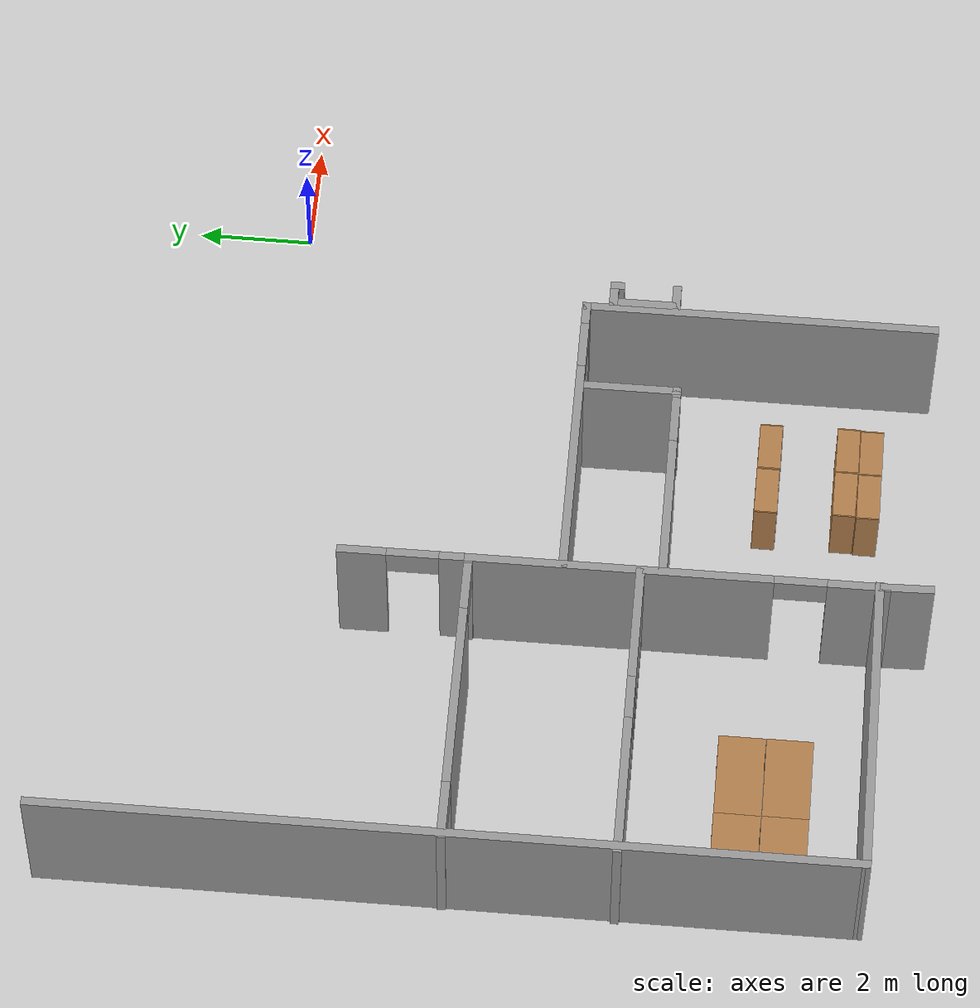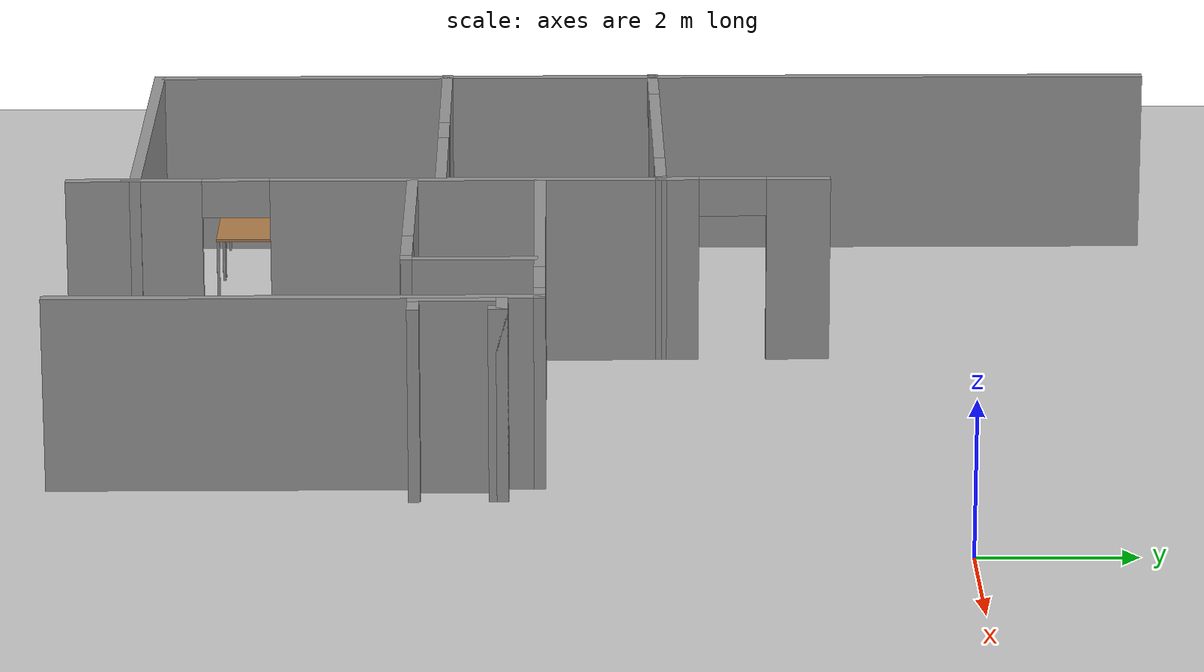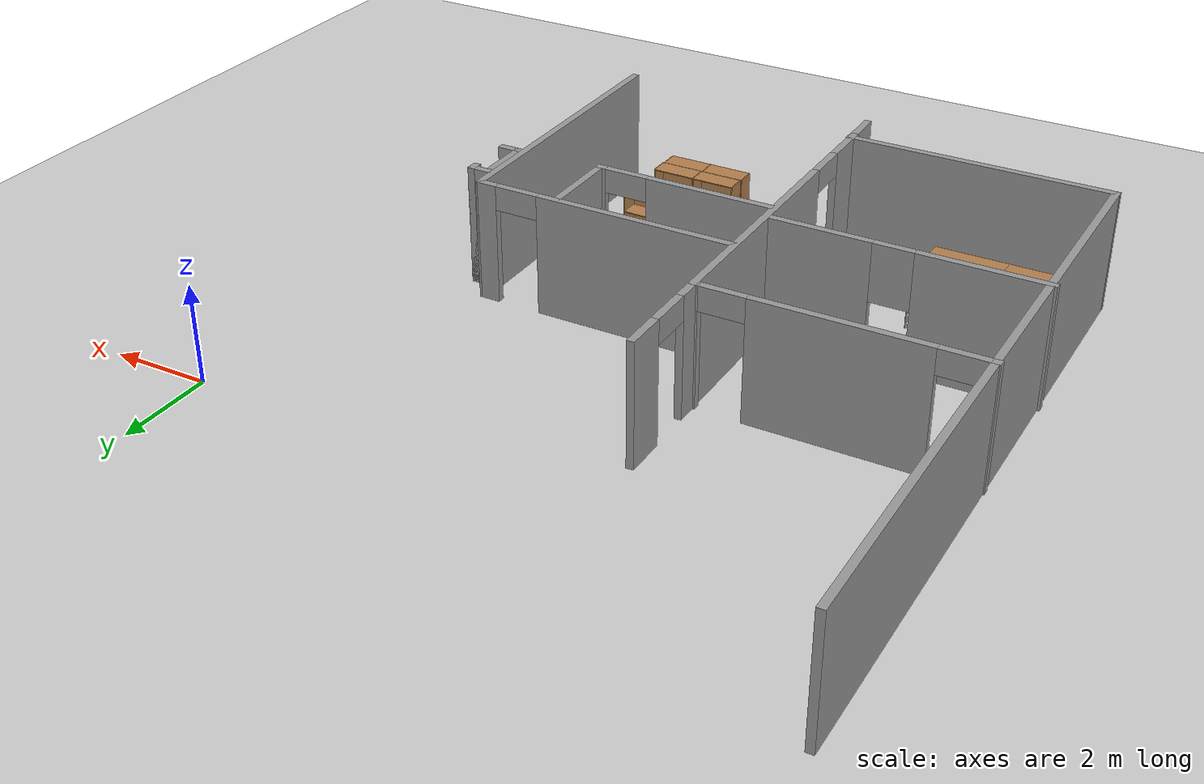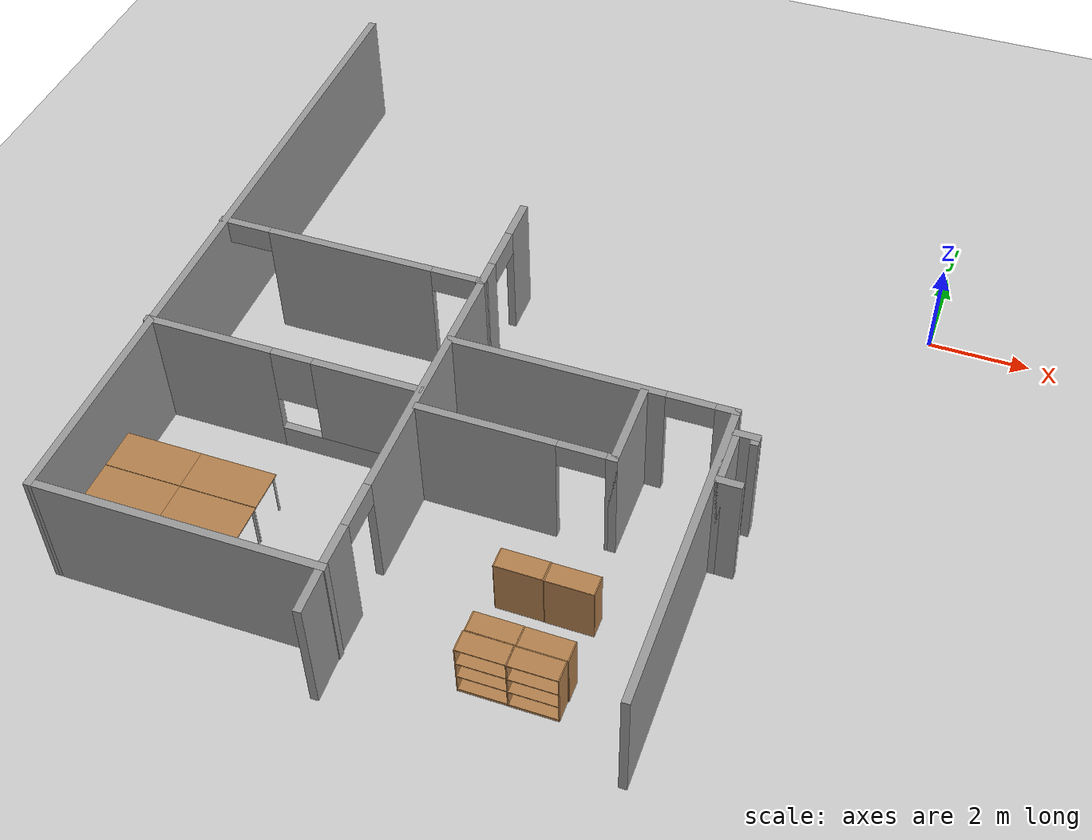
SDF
<sdf version="1.6">
 <world name="default">
  <model name="ground_plane">
   <static>1</static>
   <link name="link">
    <collision name="collision">
     <geometry><plane><normal>0 0 1</normal><size>100 100</size></plane></geometry>
     <surface><friction><ode><mu>100</mu><mu2>50</mu2></ode></friction></surface>
    </collision>
    <visual name="visual">
     <cast_shadows>0</cast_shadows>
     <geometry><plane><normal>0 0 1</normal><size>100 100</size></plane></geometry>
     <material>
      <script><uri>file://media/materials/scripts/gazebo.material</uri><name>Gazebo/Grey</name></script>
     </material>
    </visual>
   </link>
  </model>
  <model name="office02">
   <pose>-0.0751 -0.58893 0 0 -0 0</pose>
   <link name="Wall_100">
    <collision name="Wall_100_Collision">
     <geometry><box><size>0.25 0.15 2.5</size></box></geometry>
     <pose>0 0 1.25 0 -0 0</pose>
    </collision>
    <visual name="Wall_100_Visual">
     <pose>0 0 1.25 0 -0 0</pose>
     <geometry><box><size>0.25 0.15 2.5</size></box></geometry>
     <material>
      <script><uri>file://media/materials/scripts/gazebo.material</uri><name>Gazebo/Grey</name></script>
      <ambient>1 1 1 1</ambient>
     </material>
     <meta><layer>0</layer></meta>
    </visual>
    <pose>-2.1626 -5.16238 0 0 -0 -1.5708</pose>
   </link>
   <link name="Wall_6">
    <collision name="Wall_6_Collision">
     <geometry><box><size>14 0.15 2.5</size></box></geometry>
     <pose>0 0 1.25 0 -0 0</pose>
    </collision>
    <visual name="Wall_6_Visual">
     <pose>0 0 1.25 0 -0 0</pose>
     <geometry><box><size>14 0.15 2.5</size></box></geometry>
     <material>
      <script><uri>file://media/materials/scripts/gazebo.material</uri><name>Gazebo/Grey</name></script>
      <ambient>1 1 1 1</ambient>
     </material>
     <meta><layer>0</layer></meta>
    </visual>
    <pose>-13.3571 -3.12129 0 0 -0 -1.5708</pose>
   </link>
   <link name="Wall_60">
    <pose>-10.6981 -3.05436 0 0 -0 0.003767</pose>
    <visual name="Wall_60_Visual_0">
     <pose>-2.67914 0 1.25 0 -0 0</pose>
     <geometry><box><size>0.162109 0.15 2.5</size></box></geometry>
     <material>
      <script><uri>file://media/materials/scripts/gazebo.material</uri><name>Gazebo/Grey</name></script>
      <ambient>1 1 1 1</ambient>
     </material>
     <meta><layer>0</layer></meta>
    </visual>
    <collision name="Wall_60_Collision_0">
     <geometry><box><size>0.162109 0.15 2.5</size></box></geometry>
     <pose>-2.67914 0 1.25 0 -0 0</pose>
    </collision>
    <visual name="Wall_60_Visual_1">
     <pose>-0.013301 0 1.25 0 -0 0</pose>
     <geometry><box><size>3.36956 0.15 2.5</size></box></geometry>
     <material>
      <script><uri>file://media/materials/scripts/gazebo.material</uri><name>Gazebo/Grey</name></script>
      <ambient>1 1 1 1</ambient>
     </material>
     <meta><layer>0</layer></meta>
    </visual>
    <collision name="Wall_60_Collision_1">
     <geometry><box><size>3.36956 0.15 2.5</size></box></geometry>
     <pose>-0.013301 0 1.25 0 -0 0</pose>
    </collision>
    <visual name="Wall_60_Visual_2">
     <pose>2.66583 0 1.25 0 -0 0</pose>
     <geometry><box><size>0.18871 0.15 2.5</size></box></geometry>
     <material>
      <script><uri>file://media/materials/scripts/gazebo.material</uri><name>Gazebo/Grey</name></script>
      <ambient>1 1 1 1</ambient>
     </material>
     <meta><layer>0</layer></meta>
    </visual>
    <collision name="Wall_60_Collision_2">
     <geometry><box><size>0.18871 0.15 2.5</size></box></geometry>
     <pose>2.66583 0 1.25 0 -0 0</pose>
    </collision>
    <visual name="Wall_60_Visual_3">
     <pose>-2.14808 0 2.25 0 -0 0</pose>
     <geometry><box><size>0.9 0.15 0.5</size></box></geometry>
     <material>
      <script><uri>file://media/materials/scripts/gazebo.material</uri><name>Gazebo/Grey</name></script>
      <ambient>1 1 1 1</ambient>
     </material>
     <meta><layer>0</layer></meta>
    </visual>
    <collision name="Wall_60_Collision_3">
     <geometry><box><size>0.9 0.15 0.5</size></box></geometry>
     <pose>-2.14808 0 2.25 0 -0 0</pose>
    </collision>
    <visual name="Wall_60_Visual_4">
     <pose>2.12148 0 2.25 0 -0 0</pose>
     <geometry><box><size>0.9 0.15 0.5</size></box></geometry>
     <material>
      <script><uri>file://media/materials/scripts/gazebo.material</uri><name>Gazebo/Grey</name></script>
      <ambient>1 1 1 1</ambient>
     </material>
     <meta><layer>0</layer></meta>
    </visual>
    <collision name="Wall_60_Collision_4">
     <geometry><box><size>0.9 0.15 0.5</size></box></geometry>
     <pose>2.12148 0 2.25 0 -0 0</pose>
    </collision>
   </link>
   <link name="Wall_61">
    <pose>-8.01592 -1.95571 0 0 -0 1.57351</pose>
    <visual name="Wall_61_Visual_0">
     <pose>-0.874396 0 1.25 0 -0 0</pose>
     <geometry><box><size>0.578281 0.15 2.5</size></box></geometry>
     <material>
      <script><uri>file://media/materials/scripts/gazebo.material</uri><name>Gazebo/Grey</name></script>
      <ambient>1 1 1 1</ambient>
     </material>
     <meta><layer>0</layer></meta>
    </visual>
    <collision name="Wall_61_Collision_0">
     <geometry><box><size>0.578281 0.15 2.5</size></box></geometry>
     <pose>-0.874396 0 1.25 0 -0 0</pose>
    </collision>
    <visual name="Wall_61_Visual_1">
     <pose>0.73914 0 1.25 0 -0 0</pose>
     <geometry><box><size>0.848792 0.15 2.5</size></box></geometry>
     <material>
      <script><uri>file://media/materials/scripts/gazebo.material</uri><name>Gazebo/Grey</name></script>
      <ambient>1 1 1 1</ambient>
     </material>
     <meta><layer>0</layer></meta>
    </visual>
    <collision name="Wall_61_Collision_1">
     <geometry><box><size>0.848792 0.15 2.5</size></box></geometry>
     <pose>0.73914 0 1.25 0 -0 0</pose>
    </collision>
    <visual name="Wall_61_Visual_2">
     <pose>-0.135255 0 2.25 0 -0 0</pose>
     <geometry><box><size>0.9 0.15 0.5</size></box></geometry>
     <material>
      <script><uri>file://media/materials/scripts/gazebo.material</uri><name>Gazebo/Grey</name></script>
      <ambient>1 1 1 1</ambient>
     </material>
     <meta><layer>0</layer></meta>
    </visual>
    <collision name="Wall_61_Collision_2">
     <geometry><box><size>0.9 0.15 0.5</size></box></geometry>
     <pose>-0.135255 0 2.25 0 -0 0</pose>
    </collision>
   </link>
   <link name="Wall_7">
    <collision name="Wall_7_Collision">
     <geometry><box><size>5.513 0.15 2.5</size></box></geometry>
     <pose>0 0 1.25 0 -0 0</pose>
    </collision>
    <visual name="Wall_7_Visual">
     <pose>0 0 1.25 0 -0 0</pose>
     <geometry><box><size>5.513 0.15 2.5</size></box></geometry>
     <material>
      <script><uri>file://media/materials/scripts/gazebo.material</uri><name>Gazebo/Grey</name></script>
      <ambient>1 1 1 1</ambient>
     </material>
     <meta><layer>0</layer></meta>
    </visual>
    <pose>-10.6756 -10.0362 0 0 -0 0.003772</pose>
   </link>
   <link name="Wall_74">
    <pose>-8.01297 -6.59424 0 0 -0 -1.5708</pose>
    <visual name="Wall_74_Visual_0">
     <pose>-0.989784 0 1.25 0 -0 0</pose>
     <geometry><box><size>5.27043 0.15 2.5</size></box></geometry>
     <material>
      <script><uri>file://media/materials/scripts/gazebo.material</uri><name>Gazebo/Grey</name></script>
      <ambient>1 1 1 1</ambient>
     </material>
     <meta><layer>0</layer></meta>
    </visual>
    <collision name="Wall_74_Collision_0">
     <geometry><box><size>5.27043 0.15 2.5</size></box></geometry>
     <pose>-0.989784 0 1.25 0 -0 0</pose>
    </collision>
    <visual name="Wall_74_Visual_1">
     <pose>3.08522 0 1.25 0 -0 0</pose>
     <geometry><box><size>1.07957 0.15 2.5</size></box></geometry>
     <material>
      <script><uri>file://media/materials/scripts/gazebo.material</uri><name>Gazebo/Grey</name></script>
      <ambient>1 1 1 1</ambient>
     </material>
     <meta><layer>0</layer></meta>
    </visual>
    <collision name="Wall_74_Collision_1">
     <geometry><box><size>1.07957 0.15 2.5</size></box></geometry>
     <pose>3.08522 0 1.25 0 -0 0</pose>
    </collision>
    <visual name="Wall_74_Visual_2">
     <pose>2.09543 0 2.25 0 -0 0</pose>
     <geometry><box><size>0.9 0.15 0.5</size></box></geometry>
     <material>
      <script><uri>file://media/materials/scripts/gazebo.material</uri><name>Gazebo/Grey</name></script>
      <ambient>1 1 1 1</ambient>
     </material>
     <meta><layer>0</layer></meta>
    </visual>
    <collision name="Wall_74_Collision_2">
     <geometry><box><size>0.9 0.15 0.5</size></box></geometry>
     <pose>2.09543 0 2.25 0 -0 0</pose>
    </collision>
   </link>
   <link name="Wall_76">
    <pose>-10.7311 -5.97066 0 0 -0 0</pose>
    <visual name="Wall_76_Visual_0">
     <pose>-1.46747 0 1.25 0 -0 0</pose>
     <geometry><box><size>2.56506 0.15 2.5</size></box></geometry>
     <material>
      <script><uri>file://media/materials/scripts/gazebo.material</uri><name>Gazebo/Grey</name></script>
      <ambient>1 1 1 1</ambient>
     </material>
     <meta><layer>0</layer></meta>
    </visual>
    <collision name="Wall_76_Collision_0">
     <geometry><box><size>2.56506 0.15 2.5</size></box></geometry>
     <pose>-1.46747 0 1.25 0 -0 0</pose>
    </collision>
    <visual name="Wall_76_Visual_1">
     <pose>1.28253 0 0.25 0 -0 0</pose>
     <geometry><box><size>2.93494 0.15 0.5</size></box></geometry>
     <material>
      <script><uri>file://media/materials/scripts/gazebo.material</uri><name>Gazebo/Grey</name></script>
      <ambient>1 1 1 1</ambient>
     </material>
     <meta><layer>0</layer></meta>
    </visual>
    <collision name="Wall_76_Collision_1">
     <geometry><box><size>2.93494 0.15 0.5</size></box></geometry>
     <pose>1.28253 0 0.25 0 -0 0</pose>
    </collision>
    <visual name="Wall_76_Visual_2">
     <pose>1.68253 0 1.5 0 -0 0</pose>
     <geometry><box><size>2.13494 0.15 2</size></box></geometry>
     <material>
      <script><uri>file://media/materials/scripts/gazebo.material</uri><name>Gazebo/Grey</name></script>
      <ambient>1 1 1 1</ambient>
     </material>
     <meta><layer>0</layer></meta>
    </visual>
    <collision name="Wall_76_Collision_2">
     <geometry><box><size>2.13494 0.15 2</size></box></geometry>
     <pose>1.68253 0 1.5 0 -0 0</pose>
    </collision>
    <visual name="Wall_76_Visual_3">
     <pose>0.215062 0 1.9 0 -0 0</pose>
     <geometry><box><size>0.8 0.15 1.2</size></box></geometry>
     <material>
      <script><uri>file://media/materials/scripts/gazebo.material</uri><name>Gazebo/Grey</name></script>
      <ambient>1 1 1 1</ambient>
     </material>
     <meta><layer>0</layer></meta>
    </visual>
    <collision name="Wall_76_Collision_3">
     <geometry><box><size>0.8 0.15 1.2</size></box></geometry>
     <pose>0.215062 0 1.9 0 -0 0</pose>
    </collision>
   </link>
   <link name="Wall_78">
    <pose>-5.31765 -4.65043 0 0 -0 -7.4e-05</pose>
    <visual name="Wall_78_Visual_0">
     <pose>-0.673576 0 1.25 0 -0 0</pose>
     <geometry><box><size>4.15285 0.15 2.5</size></box></geometry>
     <material>
      <script><uri>file://media/materials/scripts/gazebo.material</uri><name>Gazebo/Grey</name></script>
      <ambient>1 1 1 1</ambient>
     </material>
     <meta><layer>0</layer></meta>
    </visual>
    <collision name="Wall_78_Collision_0">
     <geometry><box><size>4.15285 0.15 2.5</size></box></geometry>
     <pose>-0.673576 0 1.25 0 -0 0</pose>
    </collision>
    <visual name="Wall_78_Visual_1">
     <pose>2.52642 0 1.25 0 -0 0</pose>
     <geometry><box><size>0.447152 0.15 2.5</size></box></geometry>
     <material>
      <script><uri>file://media/materials/scripts/gazebo.material</uri><name>Gazebo/Grey</name></script>
      <ambient>1 1 1 1</ambient>
     </material>
     <meta><layer>0</layer></meta>
    </visual>
    <collision name="Wall_78_Collision_1">
     <geometry><box><size>0.447152 0.15 2.5</size></box></geometry>
     <pose>2.52642 0 1.25 0 -0 0</pose>
    </collision>
    <visual name="Wall_78_Visual_2">
     <pose>1.85285 0 2.25 0 -0 0</pose>
     <geometry><box><size>0.9 0.15 0.5</size></box></geometry>
     <material>
      <script><uri>file://media/materials/scripts/gazebo.material</uri><name>Gazebo/Grey</name></script>
      <ambient>1 1 1 1</ambient>
     </material>
     <meta><layer>0</layer></meta>
    </visual>
    <collision name="Wall_78_Collision_2">
     <geometry><box><size>0.9 0.15 0.5</size></box></geometry>
     <pose>1.85285 0 2.25 0 -0 0</pose>
    </collision>
   </link>
   <link name="Wall_79">
    <collision name="Wall_79_Collision">
     <geometry><box><size>6.25 0.15 2.5</size></box></geometry>
     <pose>0 0 1.25 0 -0 0</pose>
    </collision>
    <visual name="Wall_79_Visual">
     <pose>0 0 1.25 0 -0 0</pose>
     <geometry><box><size>6.25 0.15 2.5</size></box></geometry>
     <material>
      <script><uri>file://media/materials/scripts/gazebo.material</uri><name>Gazebo/Grey</name></script>
      <ambient>1 1 1 1</ambient>
     </material>
     <meta><layer>0</layer></meta>
    </visual>
    <pose>-2.6427 -7.70063 0 0 -0 -1.5708</pose>
   </link>
   <link name="Wall_8">
    <collision name="Wall_8_Collision">
     <geometry><box><size>1 0.15 2.5</size></box></geometry>
     <pose>0 0 1.25 0 -0 0</pose>
    </collision>
    <visual name="Wall_8_Visual">
     <pose>0 0 1.25 0 -0 0</pose>
     <geometry><box><size>1 0.15 2.5</size></box></geometry>
     <material>
      <script><uri>file://media/materials/scripts/gazebo.material</uri><name>Gazebo/Grey</name></script>
      <ambient>1 1 1 1</ambient>
     </material>
     <meta><layer>0</layer></meta>
    </visual>
    <pose>-8.00405 -10.4508 0 0 -0 -1.54645</pose>
   </link>
   <link name="Wall_81">
    <pose>-6.1084 -6.34463 0 0 -0 0</pose>
    <visual name="Wall_81_Visual_0">
     <pose>-0.55485 0 1.25 0 -0 0</pose>
     <geometry><box><size>2.6403 0.15 2.5</size></box></geometry>
     <material>
      <script><uri>file://media/materials/scripts/gazebo.material</uri><name>Gazebo/Grey</name></script>
      <ambient>1 1 1 1</ambient>
     </material>
     <meta><layer>0</layer></meta>
    </visual>
    <collision name="Wall_81_Collision_0">
     <geometry><box><size>2.6403 0.15 2.5</size></box></geometry>
     <pose>-0.55485 0 1.25 0 -0 0</pose>
    </collision>
    <visual name="Wall_81_Visual_1">
     <pose>1.77015 0 1.25 0 -0 0</pose>
     <geometry><box><size>0.2097 0.15 2.5</size></box></geometry>
     <material>
      <script><uri>file://media/materials/scripts/gazebo.material</uri><name>Gazebo/Grey</name></script>
      <ambient>1 1 1 1</ambient>
     </material>
     <meta><layer>0</layer></meta>
    </visual>
    <collision name="Wall_81_Collision_1">
     <geometry><box><size>0.2097 0.15 2.5</size></box></geometry>
     <pose>1.77015 0 1.25 0 -0 0</pose>
    </collision>
    <visual name="Wall_81_Visual_2">
     <pose>1.2153 0 2.25 0 -0 0</pose>
     <geometry><box><size>0.9 0.15 0.5</size></box></geometry>
     <material>
      <script><uri>file://media/materials/scripts/gazebo.material</uri><name>Gazebo/Grey</name></script>
      <ambient>1 1 1 1</ambient>
     </material>
     <meta><layer>0</layer></meta>
    </visual>
    <collision name="Wall_81_Collision_2">
     <geometry><box><size>0.9 0.15 0.5</size></box></geometry>
     <pose>1.2153 0 2.25 0 -0 0</pose>
    </collision>
   </link>
   <link name="Wall_82">
    <collision name="Wall_82_Collision">
     <geometry><box><size>1.75 0.15 2.5</size></box></geometry>
     <pose>0 0 1.25 0 -0 0</pose>
    </collision>
    <visual name="Wall_82_Visual">
     <pose>0 0 1.25 0 -0 0</pose>
     <geometry><box><size>1.75 0.15 2.5</size></box></geometry>
     <material>
      <script><uri>file://media/materials/scripts/gazebo.material</uri><name>Gazebo/Grey</name></script>
      <ambient>1 1 1 1</ambient>
     </material>
     <meta><layer>0</layer></meta>
    </visual>
    <pose>-4.3084 -5.54463 0 0 -0 1.5708</pose>
   </link>
   <link name="Wall_85">
    <collision name="Wall_85_Collision">
     <geometry><box><size>0.5 0.15 2.5</size></box></geometry>
     <pose>0 0 1.25 0 -0 0</pose>
    </collision>
    <visual name="Wall_85_Visual">
     <pose>0 0 1.25 0 -0 0</pose>
     <geometry><box><size>0.5 0.15 2.5</size></box></geometry>
     <material>
      <script><uri>file://media/materials/scripts/gazebo.material</uri><name>Gazebo/Grey</name></script>
      <ambient>1 1 1 1</ambient>
     </material>
     <meta><layer>0</layer></meta>
    </visual>
    <pose>-2.3376 -6.21238 0 0 -0 0</pose>
   </link>
   <link name="Wall_87">
    <collision name="Wall_87_Collision">
     <geometry><box><size>0.5 0.15 2.5</size></box></geometry>
     <pose>0 0 1.25 0 -0 0</pose>
    </collision>
    <visual name="Wall_87_Visual">
     <pose>0 0 1.25 0 -0 0</pose>
     <geometry><box><size>0.5 0.15 2.5</size></box></geometry>
     <material>
      <script><uri>file://media/materials/scripts/gazebo.material</uri><name>Gazebo/Grey</name></script>
      <ambient>1 1 1 1</ambient>
     </material>
     <meta><layer>0</layer></meta>
    </visual>
    <pose>-2.3376 -5.11238 0 0 -0 3.14159</pose>
   </link>
   <link name="Wall_89">
    <collision name="Wall_89_Collision">
     <geometry><box><size>1.25 0.15 2.5</size></box></geometry>
     <pose>0 0 1.25 0 -0 0</pose>
    </collision>
    <visual name="Wall_89_Visual">
     <pose>0 0 1.25 0 -0 0</pose>
     <geometry><box><size>1.25 0.15 2.5</size></box></geometry>
     <material>
      <script><uri>file://media/materials/scripts/gazebo.material</uri><name>Gazebo/Grey</name></script>
      <ambient>1 1 1 1</ambient>
     </material>
     <meta><layer>0</layer></meta>
    </visual>
    <pose>-2.5126 -5.66238 0 0 -0 -1.5708</pose>
   </link>
   <static>1</static>
  </model>
  <model name="bookshelf">
   <static>1</static>
   <link name="link">
    <inertial><mass>1</mass></inertial>
    <collision name="back">
     <pose>0 0.005 0.6 0 -0 0</pose>
     <geometry><box><size>0.9 0.01 1.2</size></box></geometry>
    </collision>
    <visual name="visual1">
     <pose>0 0.005 0.6 0 -0 0</pose>
     <geometry><box><size>0.9 0.01 1.2</size></box></geometry>
     <material>
      <script><uri>file://media/materials/scripts/gazebo.material</uri><name>Gazebo/Wood</name></script>
     </material>
    </visual>
    <collision name="left_side">
     <pose>0.45 -0.195 0.6 0 -0 0</pose>
     <geometry><box><size>0.02 0.4 1.2</size></box></geometry>
    </collision>
    <visual name="visual2">
     <pose>0.45 -0.195 0.6 0 -0 0</pose>
     <geometry><box><size>0.02 0.4 1.2</size></box></geometry>
     <material>
      <script><uri>file://media/materials/scripts/gazebo.material</uri><name>Gazebo/Wood</name></script>
     </material>
    </visual>
    <collision name="right_side">
     <pose>-0.45 -0.195 0.6 0 -0 0</pose>
     <geometry><box><size>0.02 0.4 1.2</size></box></geometry>
    </collision>
    <visual name="visual3">
     <pose>-0.45 -0.195 0.6 0 -0 0</pose>
     <geometry><box><size>0.02 0.4 1.2</size></box></geometry>
     <material>
      <script><uri>file://media/materials/scripts/gazebo.material</uri><name>Gazebo/Wood</name></script>
     </material>
    </visual>
    <collision name="bottom">
     <pose>0 -0.195 0.03 0 -0 0</pose>
     <geometry><box><size>0.88 0.4 0.06</size></box></geometry>
    </collision>
    <visual name="visual4">
     <pose>0 -0.195 0.03 0 -0 0</pose>
     <geometry><box><size>0.88 0.4 0.06</size></box></geometry>
     <material>
      <script><uri>file://media/materials/scripts/gazebo.material</uri><name>Gazebo/Wood</name></script>
     </material>
    </visual>
    <collision name="top">
     <pose>0 -0.195 1.19 0 -0 0</pose>
     <geometry><box><size>0.88 0.4 0.02</size></box></geometry>
    </collision>
    <visual name="visual5">
     <pose>0 -0.195 1.19 0 -0 0</pose>
     <geometry><box><size>0.88 0.4 0.02</size></box></geometry>
     <material>
      <script><uri>file://media/materials/scripts/gazebo.material</uri><name>Gazebo/Wood</name></script>
     </material>
    </visual>
    <collision name="low_shelf">
     <pose>0 -0.195 0.43 0 -0 0</pose>
     <geometry><box><size>0.88 0.4 0.02</size></box></geometry>
    </collision>
    <visual name="visual6">
     <pose>0 -0.195 0.43 0 -0 0</pose>
     <geometry><box><size>0.88 0.4 0.02</size></box></geometry>
     <material>
      <script><uri>file://media/materials/scripts/gazebo.material</uri><name>Gazebo/Wood</name></script>
     </material>
    </visual>
    <collision name="high_shelf">
     <pose>0 -0.195 0.8 0 -0 0</pose>
     <geometry><box><size>0.88 0.4 0.02</size></box></geometry>
    </collision>
    <visual name="visual7">
     <pose>0 -0.195 0.8 0 -0 0</pose>
     <geometry><box><size>0.88 0.4 0.02</size></box></geometry>
     <material>
      <script><uri>file://media/materials/scripts/gazebo.material</uri><name>Gazebo/Wood</name></script>
     </material>
    </visual>
   </link>
   <pose>-5.45404 -8.81186 0 0 -0 3.13674</pose>
  </model>
  <model name="bookshelf_clone">
   <static>1</static>
   <link name="link">
    <inertial><mass>1</mass></inertial>
    <collision name="back">
     <pose>0 0.005 0.6 0 -0 0</pose>
     <geometry><box><size>0.9 0.01 1.2</size></box></geometry>
    </collision>
    <visual name="visual1">
     <pose>0 0.005 0.6 0 -0 0</pose>
     <geometry><box><size>0.9 0.01 1.2</size></box></geometry>
     <material>
      <script><uri>file://media/materials/scripts/gazebo.material</uri><name>Gazebo/Wood</name></script>
     </material>
    </visual>
    <collision name="left_side">
     <pose>0.45 -0.195 0.6 0 -0 0</pose>
     <geometry><box><size>0.02 0.4 1.2</size></box></geometry>
    </collision>
    <visual name="visual2">
     <pose>0.45 -0.195 0.6 0 -0 0</pose>
     <geometry><box><size>0.02 0.4 1.2</size></box></geometry>
     <material>
      <script><uri>file://media/materials/scripts/gazebo.material</uri><name>Gazebo/Wood</name></script>
     </material>
    </visual>
    <collision name="right_side">
     <pose>-0.45 -0.195 0.6 0 -0 0</pose>
     <geometry><box><size>0.02 0.4 1.2</size></box></geometry>
    </collision>
    <visual name="visual3">
     <pose>-0.45 -0.195 0.6 0 -0 0</pose>
     <geometry><box><size>0.02 0.4 1.2</size></box></geometry>
     <material>
      <script><uri>file://media/materials/scripts/gazebo.material</uri><name>Gazebo/Wood</name></script>
     </material>
    </visual>
    <collision name="bottom">
     <pose>0 -0.195 0.03 0 -0 0</pose>
     <geometry><box><size>0.88 0.4 0.06</size></box></geometry>
    </collision>
    <visual name="visual4">
     <pose>0 -0.195 0.03 0 -0 0</pose>
     <geometry><box><size>0.88 0.4 0.06</size></box></geometry>
     <material>
      <script><uri>file://media/materials/scripts/gazebo.material</uri><name>Gazebo/Wood</name></script>
     </material>
    </visual>
    <collision name="top">
     <pose>0 -0.195 1.19 0 -0 0</pose>
     <geometry><box><size>0.88 0.4 0.02</size></box></geometry>
    </collision>
    <visual name="visual5">
     <pose>0 -0.195 1.19 0 -0 0</pose>
     <geometry><box><size>0.88 0.4 0.02</size></box></geometry>
     <material>
      <script><uri>file://media/materials/scripts/gazebo.material</uri><name>Gazebo/Wood</name></script>
     </material>
    </visual>
    <collision name="low_shelf">
     <pose>0 -0.195 0.43 0 -0 0</pose>
     <geometry><box><size>0.88 0.4 0.02</size></box></geometry>
    </collision>
    <visual name="visual6">
     <pose>0 -0.195 0.43 0 -0 0</pose>
     <geometry><box><size>0.88 0.4 0.02</size></box></geometry>
     <material>
      <script><uri>file://media/materials/scripts/gazebo.material</uri><name>Gazebo/Wood</name></script>
     </material>
    </visual>
    <collision name="high_shelf">
     <pose>0 -0.195 0.8 0 -0 0</pose>
     <geometry><box><size>0.88 0.4 0.02</size></box></geometry>
    </collision>
    <visual name="visual7">
     <pose>0 -0.195 0.8 0 -0 0</pose>
     <geometry><box><size>0.88 0.4 0.02</size></box></geometry>
     <material>
      <script><uri>file://media/materials/scripts/gazebo.material</uri><name>Gazebo/Wood</name></script>
     </material>
    </visual>
   </link>
   <pose>-4.53691 -8.82151 0 0 -0 3.13674</pose>
  </model>
  <model name="bookshelf_clone_0">
   <static>1</static>
   <link name="link">
    <inertial><mass>1</mass></inertial>
    <collision name="back">
     <pose>0 0.005 0.6 0 -0 0</pose>
     <geometry><box><size>0.9 0.01 1.2</size></box></geometry>
    </collision>
    <visual name="visual1">
     <pose>0 0.005 0.6 0 -0 0</pose>
     <geometry><box><size>0.9 0.01 1.2</size></box></geometry>
     <material>
      <script><uri>file://media/materials/scripts/gazebo.material</uri><name>Gazebo/Wood</name></script>
     </material>
    </visual>
    <collision name="left_side">
     <pose>0.45 -0.195 0.6 0 -0 0</pose>
     <geometry><box><size>0.02 0.4 1.2</size></box></geometry>
    </collision>
    <visual name="visual2">
     <pose>0.45 -0.195 0.6 0 -0 0</pose>
     <geometry><box><size>0.02 0.4 1.2</size></box></geometry>
     <material>
      <script><uri>file://media/materials/scripts/gazebo.material</uri><name>Gazebo/Wood</name></script>
     </material>
    </visual>
    <collision name="right_side">
     <pose>-0.45 -0.195 0.6 0 -0 0</pose>
     <geometry><box><size>0.02 0.4 1.2</size></box></geometry>
    </collision>
    <visual name="visual3">
     <pose>-0.45 -0.195 0.6 0 -0 0</pose>
     <geometry><box><size>0.02 0.4 1.2</size></box></geometry>
     <material>
      <script><uri>file://media/materials/scripts/gazebo.material</uri><name>Gazebo/Wood</name></script>
     </material>
    </visual>
    <collision name="bottom">
     <pose>0 -0.195 0.03 0 -0 0</pose>
     <geometry><box><size>0.88 0.4 0.06</size></box></geometry>
    </collision>
    <visual name="visual4">
     <pose>0 -0.195 0.03 0 -0 0</pose>
     <geometry><box><size>0.88 0.4 0.06</size></box></geometry>
     <material>
      <script><uri>file://media/materials/scripts/gazebo.material</uri><name>Gazebo/Wood</name></script>
     </material>
    </visual>
    <collision name="top">
     <pose>0 -0.195 1.19 0 -0 0</pose>
     <geometry><box><size>0.88 0.4 0.02</size></box></geometry>
    </collision>
    <visual name="visual5">
     <pose>0 -0.195 1.19 0 -0 0</pose>
     <geometry><box><size>0.88 0.4 0.02</size></box></geometry>
     <material>
      <script><uri>file://media/materials/scripts/gazebo.material</uri><name>Gazebo/Wood</name></script>
     </material>
    </visual>
    <collision name="low_shelf">
     <pose>0 -0.195 0.43 0 -0 0</pose>
     <geometry><box><size>0.88 0.4 0.02</size></box></geometry>
    </collision>
    <visual name="visual6">
     <pose>0 -0.195 0.43 0 -0 0</pose>
     <geometry><box><size>0.88 0.4 0.02</size></box></geometry>
     <material>
      <script><uri>file://media/materials/scripts/gazebo.material</uri><name>Gazebo/Wood</name></script>
     </material>
    </visual>
    <collision name="high_shelf">
     <pose>0 -0.195 0.8 0 -0 0</pose>
     <geometry><box><size>0.88 0.4 0.02</size></box></geometry>
    </collision>
    <visual name="visual7">
     <pose>0 -0.195 0.8 0 -0 0</pose>
     <geometry><box><size>0.88 0.4 0.02</size></box></geometry>
     <material>
      <script><uri>file://media/materials/scripts/gazebo.material</uri><name>Gazebo/Wood</name></script>
     </material>
    </visual>
   </link>
   <pose>-5.41933 -10.1766 0 0 -0 3.13674</pose>
  </model>
  <model name="bookshelf_clone_1">
   <static>1</static>
   <link name="link">
    <inertial><mass>1</mass></inertial>
    <collision name="back">
     <pose>0 0.005 0.6 0 -0 0</pose>
     <geometry><box><size>0.9 0.01 1.2</size></box></geometry>
    </collision>
    <visual name="visual1">
     <pose>0 0.005 0.6 0 -0 0</pose>
     <geometry><box><size>0.9 0.01 1.2</size></box></geometry>
     <material>
      <script><uri>file://media/materials/scripts/gazebo.material</uri><name>Gazebo/Wood</name></script>
     </material>
    </visual>
    <collision name="left_side">
     <pose>0.45 -0.195 0.6 0 -0 0</pose>
     <geometry><box><size>0.02 0.4 1.2</size></box></geometry>
    </collision>
    <visual name="visual2">
     <pose>0.45 -0.195 0.6 0 -0 0</pose>
     <geometry><box><size>0.02 0.4 1.2</size></box></geometry>
     <material>
      <script><uri>file://media/materials/scripts/gazebo.material</uri><name>Gazebo/Wood</name></script>
     </material>
    </visual>
    <collision name="right_side">
     <pose>-0.45 -0.195 0.6 0 -0 0</pose>
     <geometry><box><size>0.02 0.4 1.2</size></box></geometry>
    </collision>
    <visual name="visual3">
     <pose>-0.45 -0.195 0.6 0 -0 0</pose>
     <geometry><box><size>0.02 0.4 1.2</size></box></geometry>
     <material>
      <script><uri>file://media/materials/scripts/gazebo.material</uri><name>Gazebo/Wood</name></script>
     </material>
    </visual>
    <collision name="bottom">
     <pose>0 -0.195 0.03 0 -0 0</pose>
     <geometry><box><size>0.88 0.4 0.06</size></box></geometry>
    </collision>
    <visual name="visual4">
     <pose>0 -0.195 0.03 0 -0 0</pose>
     <geometry><box><size>0.88 0.4 0.06</size></box></geometry>
     <material>
      <script><uri>file://media/materials/scripts/gazebo.material</uri><name>Gazebo/Wood</name></script>
     </material>
    </visual>
    <collision name="top">
     <pose>0 -0.195 1.19 0 -0 0</pose>
     <geometry><box><size>0.88 0.4 0.02</size></box></geometry>
    </collision>
    <visual name="visual5">
     <pose>0 -0.195 1.19 0 -0 0</pose>
     <geometry><box><size>0.88 0.4 0.02</size></box></geometry>
     <material>
      <script><uri>file://media/materials/scripts/gazebo.material</uri><name>Gazebo/Wood</name></script>
     </material>
    </visual>
    <collision name="low_shelf">
     <pose>0 -0.195 0.43 0 -0 0</pose>
     <geometry><box><size>0.88 0.4 0.02</size></box></geometry>
    </collision>
    <visual name="visual6">
     <pose>0 -0.195 0.43 0 -0 0</pose>
     <geometry><box><size>0.88 0.4 0.02</size></box></geometry>
     <material>
      <script><uri>file://media/materials/scripts/gazebo.material</uri><name>Gazebo/Wood</name></script>
     </material>
    </visual>
    <collision name="high_shelf">
     <pose>0 -0.195 0.8 0 -0 0</pose>
     <geometry><box><size>0.88 0.4 0.02</size></box></geometry>
    </collision>
    <visual name="visual7">
     <pose>0 -0.195 0.8 0 -0 0</pose>
     <geometry><box><size>0.88 0.4 0.02</size></box></geometry>
     <material>
      <script><uri>file://media/materials/scripts/gazebo.material</uri><name>Gazebo/Wood</name></script>
     </material>
    </visual>
   </link>
   <pose>-4.51359 -10.1849 0 0 -0 3.13674</pose>
  </model>
  <model name="table">
   <static>1</static>
   <link name="link">
    <collision name="surface">
     <pose>0 0 1 0 -0 0</pose>
     <geometry><box><size>1.5 0.8 0.03</size></box></geometry>
     <surface><friction><ode><mu>0.6</mu><mu2>0.6</mu2></ode></friction></surface>
    </collision>
    <visual name="visual1">
     <pose>0 0 1 0 -0 0</pose>
     <geometry><box><size>1.5 0.8 0.03</size></box></geometry>
     <material>
      <script><uri>file://media/materials/scripts/gazebo.material</uri><name>Gazebo/Wood</name></script>
     </material>
    </visual>
    <collision name="front_left_leg">
     <pose>0.68 0.38 0.5 0 -0 0</pose>
     <geometry><cylinder><radius>0.02</radius><length>1</length></cylinder></geometry>
    </collision>
    <visual name="front_left_leg">
     <pose>0.68 0.38 0.5 0 -0 0</pose>
     <geometry><cylinder><radius>0.02</radius><length>1</length></cylinder></geometry>
     <material>
      <script><uri>file://media/materials/scripts/gazebo.material</uri><name>Gazebo/Grey</name></script>
     </material>
    </visual>
    <collision name="front_right_leg">
     <pose>0.68 -0.38 0.5 0 -0 0</pose>
     <geometry><cylinder><radius>0.02</radius><length>1</length></cylinder></geometry>
    </collision>
    <visual name="front_right_leg">
     <pose>0.68 -0.38 0.5 0 -0 0</pose>
     <geometry><cylinder><radius>0.02</radius><length>1</length></cylinder></geometry>
     <material>
      <script><uri>file://media/materials/scripts/gazebo.material</uri><name>Gazebo/Grey</name></script>
     </material>
    </visual>
    <collision name="back_right_leg">
     <pose>-0.68 -0.38 0.5 0 -0 0</pose>
     <geometry><cylinder><radius>0.02</radius><length>1</length></cylinder></geometry>
    </collision>
    <visual name="back_right_leg">
     <pose>-0.68 -0.38 0.5 0 -0 0</pose>
     <geometry><cylinder><radius>0.02</radius><length>1</length></cylinder></geometry>
     <material>
      <script><uri>file://media/materials/scripts/gazebo.material</uri><name>Gazebo/Grey</name></script>
     </material>
    </visual>
    <collision name="back_left_leg">
     <pose>-0.68 0.38 0.5 0 -0 0</pose>
     <geometry><cylinder><radius>0.02</radius><length>1</length></cylinder></geometry>
    </collision>
    <visual name="back_left_leg">
     <pose>-0.68 0.38 0.5 0 -0 0</pose>
     <geometry><cylinder><radius>0.02</radius><length>1</length></cylinder></geometry>
     <material>
      <script><uri>file://media/materials/scripts/gazebo.material</uri><name>Gazebo/Grey</name></script>
     </material>
    </visual>
   </link>
   <pose>-12.5956 -8.4815 0 0 -0 0</pose>
  </model>
  <model name="table_clone">
   <static>1</static>
   <link name="link">
    <collision name="surface">
     <pose>0 0 1 0 -0 0</pose>
     <geometry><box><size>1.5 0.8 0.03</size></box></geometry>
     <surface><friction><ode><mu>0.6</mu><mu2>0.6</mu2></ode></friction></surface>
    </collision>
    <visual name="visual1">
     <pose>0 0 1 0 -0 0</pose>
     <geometry><box><size>1.5 0.8 0.03</size></box></geometry>
     <material>
      <script><uri>file://media/materials/scripts/gazebo.material</uri><name>Gazebo/Wood</name></script>
     </material>
    </visual>
    <collision name="front_left_leg">
     <pose>0.68 0.38 0.5 0 -0 0</pose>
     <geometry><cylinder><radius>0.02</radius><length>1</length></cylinder></geometry>
    </collision>
    <visual name="front_left_leg">
     <pose>0.68 0.38 0.5 0 -0 0</pose>
     <geometry><cylinder><radius>0.02</radius><length>1</length></cylinder></geometry>
     <material>
      <script><uri>file://media/materials/scripts/gazebo.material</uri><name>Gazebo/Grey</name></script>
     </material>
    </visual>
    <collision name="front_right_leg">
     <pose>0.68 -0.38 0.5 0 -0 0</pose>
     <geometry><cylinder><radius>0.02</radius><length>1</length></cylinder></geometry>
    </collision>
    <visual name="front_right_leg">
     <pose>0.68 -0.38 0.5 0 -0 0</pose>
     <geometry><cylinder><radius>0.02</radius><length>1</length></cylinder></geometry>
     <material>
      <script><uri>file://media/materials/scripts/gazebo.material</uri><name>Gazebo/Grey</name></script>
     </material>
    </visual>
    <collision name="back_right_leg">
     <pose>-0.68 -0.38 0.5 0 -0 0</pose>
     <geometry><cylinder><radius>0.02</radius><length>1</length></cylinder></geometry>
    </collision>
    <visual name="back_right_leg">
     <pose>-0.68 -0.38 0.5 0 -0 0</pose>
     <geometry><cylinder><radius>0.02</radius><length>1</length></cylinder></geometry>
     <material>
      <script><uri>file://media/materials/scripts/gazebo.material</uri><name>Gazebo/Grey</name></script>
     </material>
    </visual>
    <collision name="back_left_leg">
     <pose>-0.68 0.38 0.5 0 -0 0</pose>
     <geometry><cylinder><radius>0.02</radius><length>1</length></cylinder></geometry>
    </collision>
    <visual name="back_left_leg">
     <pose>-0.68 0.38 0.5 0 -0 0</pose>
     <geometry><cylinder><radius>0.02</radius><length>1</length></cylinder></geometry>
     <material>
      <script><uri>file://media/materials/scripts/gazebo.material</uri><name>Gazebo/Grey</name></script>
     </material>
    </visual>
   </link>
   <pose>-11.0989 -8.48396 0 0 -0 0</pose>
  </model>
  <model name="table_clone_0">
   <static>1</static>
   <link name="link">
    <collision name="surface">
     <pose>0 0 1 0 -0 0</pose>
     <geometry><box><size>1.5 0.8 0.03</size></box></geometry>
     <surface><friction><ode><mu>0.6</mu><mu2>0.6</mu2></ode></friction></surface>
    </collision>
    <visual name="visual1">
     <pose>0 0 1 0 -0 0</pose>
     <geometry><box><size>1.5 0.8 0.03</size></box></geometry>
     <material>
      <script><uri>file://media/materials/scripts/gazebo.material</uri><name>Gazebo/Wood</name></script>
     </material>
    </visual>
    <collision name="front_left_leg">
     <pose>0.68 0.38 0.5 0 -0 0</pose>
     <geometry><cylinder><radius>0.02</radius><length>1</length></cylinder></geometry>
    </collision>
    <visual name="front_left_leg">
     <pose>0.68 0.38 0.5 0 -0 0</pose>
     <geometry><cylinder><radius>0.02</radius><length>1</length></cylinder></geometry>
     <material>
      <script><uri>file://media/materials/scripts/gazebo.material</uri><name>Gazebo/Grey</name></script>
     </material>
    </visual>
    <collision name="front_right_leg">
     <pose>0.68 -0.38 0.5 0 -0 0</pose>
     <geometry><cylinder><radius>0.02</radius><length>1</length></cylinder></geometry>
    </collision>
    <visual name="front_right_leg">
     <pose>0.68 -0.38 0.5 0 -0 0</pose>
     <geometry><cylinder><radius>0.02</radius><length>1</length></cylinder></geometry>
     <material>
      <script><uri>file://media/materials/scripts/gazebo.material</uri><name>Gazebo/Grey</name></script>
     </material>
    </visual>
    <collision name="back_right_leg">
     <pose>-0.68 -0.38 0.5 0 -0 0</pose>
     <geometry><cylinder><radius>0.02</radius><length>1</length></cylinder></geometry>
    </collision>
    <visual name="back_right_leg">
     <pose>-0.68 -0.38 0.5 0 -0 0</pose>
     <geometry><cylinder><radius>0.02</radius><length>1</length></cylinder></geometry>
     <material>
      <script><uri>file://media/materials/scripts/gazebo.material</uri><name>Gazebo/Grey</name></script>
     </material>
    </visual>
    <collision name="back_left_leg">
     <pose>-0.68 0.38 0.5 0 -0 0</pose>
     <geometry><cylinder><radius>0.02</radius><length>1</length></cylinder></geometry>
    </collision>
    <visual name="back_left_leg">
     <pose>-0.68 0.38 0.5 0 -0 0</pose>
     <geometry><cylinder><radius>0.02</radius><length>1</length></cylinder></geometry>
     <material>
      <script><uri>file://media/materials/scripts/gazebo.material</uri><name>Gazebo/Grey</name></script>
     </material>
    </visual>
   </link>
   <pose>-11.0958 -9.29439 0 0 -0 0</pose>
  </model>
  <model name="table_clone_1">
   <static>1</static>
   <link name="link">
    <collision name="surface">
     <pose>0 0 1 0 -0 0</pose>
     <geometry><box><size>1.5 0.8 0.03</size></box></geometry>
     <surface><friction><ode><mu>0.6</mu><mu2>0.6</mu2></ode></friction></surface>
    </collision>
    <visual name="visual1">
     <pose>0 0 1 0 -0 0</pose>
     <geometry><box><size>1.5 0.8 0.03</size></box></geometry>
     <material>
      <script><uri>file://media/materials/scripts/gazebo.material</uri><name>Gazebo/Wood</name></script>
     </material>
    </visual>
    <collision name="front_left_leg">
     <pose>0.68 0.38 0.5 0 -0 0</pose>
     <geometry><cylinder><radius>0.02</radius><length>1</length></cylinder></geometry>
    </collision>
    <visual name="front_left_leg">
     <pose>0.68 0.38 0.5 0 -0 0</pose>
     <geometry><cylinder><radius>0.02</radius><length>1</length></cylinder></geometry>
     <material>
      <script><uri>file://media/materials/scripts/gazebo.material</uri><name>Gazebo/Grey</name></script>
     </material>
    </visual>
    <collision name="front_right_leg">
     <pose>0.68 -0.38 0.5 0 -0 0</pose>
     <geometry><cylinder><radius>0.02</radius><length>1</length></cylinder></geometry>
    </collision>
    <visual name="front_right_leg">
     <pose>0.68 -0.38 0.5 0 -0 0</pose>
     <geometry><cylinder><radius>0.02</radius><length>1</length></cylinder></geometry>
     <material>
      <script><uri>file://media/materials/scripts/gazebo.material</uri><name>Gazebo/Grey</name></script>
     </material>
    </visual>
    <collision name="back_right_leg">
     <pose>-0.68 -0.38 0.5 0 -0 0</pose>
     <geometry><cylinder><radius>0.02</radius><length>1</length></cylinder></geometry>
    </collision>
    <visual name="back_right_leg">
     <pose>-0.68 -0.38 0.5 0 -0 0</pose>
     <geometry><cylinder><radius>0.02</radius><length>1</length></cylinder></geometry>
     <material>
      <script><uri>file://media/materials/scripts/gazebo.material</uri><name>Gazebo/Grey</name></script>
     </material>
    </visual>
    <collision name="back_left_leg">
     <pose>-0.68 0.38 0.5 0 -0 0</pose>
     <geometry><cylinder><radius>0.02</radius><length>1</length></cylinder></geometry>
    </collision>
    <visual name="back_left_leg">
     <pose>-0.68 0.38 0.5 0 -0 0</pose>
     <geometry><cylinder><radius>0.02</radius><length>1</length></cylinder></geometry>
     <material>
      <script><uri>file://media/materials/scripts/gazebo.material</uri><name>Gazebo/Grey</name></script>
     </material>
    </visual>
   </link>
   <pose>-12.5957 -9.2909 0 0 -0 0</pose>
  </model>
  <model name="bookshelf_0">
   <static>1</static>
   <link name="link">
    <inertial><mass>1</mass></inertial>
    <collision name="back">
     <pose>0 0.005 0.6 0 -0 0</pose>
     <geometry><box><size>0.9 0.01 1.2</size></box></geometry>
    </collision>
    <visual name="visual1">
     <pose>0 0.005 0.6 0 -0 0</pose>
     <geometry><box><size>0.9 0.01 1.2</size></box></geometry>
     <material>
      <script><uri>file://media/materials/scripts/gazebo.material</uri><name>Gazebo/Wood</name></script>
     </material>
    </visual>
    <collision name="left_side">
     <pose>0.45 -0.195 0.6 0 -0 0</pose>
     <geometry><box><size>0.02 0.4 1.2</size></box></geometry>
    </collision>
    <visual name="visual2">
     <pose>0.45 -0.195 0.6 0 -0 0</pose>
     <geometry><box><size>0.02 0.4 1.2</size></box></geometry>
     <material>
      <script><uri>file://media/materials/scripts/gazebo.material</uri><name>Gazebo/Wood</name></script>
     </material>
    </visual>
    <collision name="right_side">
     <pose>-0.45 -0.195 0.6 0 -0 0</pose>
     <geometry><box><size>0.02 0.4 1.2</size></box></geometry>
    </collision>
    <visual name="visual3">
     <pose>-0.45 -0.195 0.6 0 -0 0</pose>
     <geometry><box><size>0.02 0.4 1.2</size></box></geometry>
     <material>
      <script><uri>file://media/materials/scripts/gazebo.material</uri><name>Gazebo/Wood</name></script>
     </material>
    </visual>
    <collision name="bottom">
     <pose>0 -0.195 0.03 0 -0 0</pose>
     <geometry><box><size>0.88 0.4 0.06</size></box></geometry>
    </collision>
    <visual name="visual4">
     <pose>0 -0.195 0.03 0 -0 0</pose>
     <geometry><box><size>0.88 0.4 0.06</size></box></geometry>
     <material>
      <script><uri>file://media/materials/scripts/gazebo.material</uri><name>Gazebo/Wood</name></script>
     </material>
    </visual>
    <collision name="top">
     <pose>0 -0.195 1.19 0 -0 0</pose>
     <geometry><box><size>0.88 0.4 0.02</size></box></geometry>
    </collision>
    <visual name="visual5">
     <pose>0 -0.195 1.19 0 -0 0</pose>
     <geometry><box><size>0.88 0.4 0.02</size></box></geometry>
     <material>
      <script><uri>file://media/materials/scripts/gazebo.material</uri><name>Gazebo/Wood</name></script>
     </material>
    </visual>
    <collision name="low_shelf">
     <pose>0 -0.195 0.43 0 -0 0</pose>
     <geometry><box><size>0.88 0.4 0.02</size></box></geometry>
    </collision>
    <visual name="visual6">
     <pose>0 -0.195 0.43 0 -0 0</pose>
     <geometry><box><size>0.88 0.4 0.02</size></box></geometry>
     <material>
      <script><uri>file://media/materials/scripts/gazebo.material</uri><name>Gazebo/Wood</name></script>
     </material>
    </visual>
    <collision name="high_shelf">
     <pose>0 -0.195 0.8 0 -0 0</pose>
     <geometry><box><size>0.88 0.4 0.02</size></box></geometry>
    </collision>
    <visual name="visual7">
     <pose>0 -0.195 0.8 0 -0 0</pose>
     <geometry><box><size>0.88 0.4 0.02</size></box></geometry>
     <material>
      <script><uri>file://media/materials/scripts/gazebo.material</uri><name>Gazebo/Wood</name></script>
     </material>
    </visual>
   </link>
   <pose>-5.44076 -10.2001 0 0 -0 0</pose>
  </model>
  <model name="bookshelf_1">
   <static>1</static>
   <link name="link">
    <inertial><mass>1</mass></inertial>
    <collision name="back">
     <pose>0 0.005 0.6 0 -0 0</pose>
     <geometry><box><size>0.9 0.01 1.2</size></box></geometry>
    </collision>
    <visual name="visual1">
     <pose>0 0.005 0.6 0 -0 0</pose>
     <geometry><box><size>0.9 0.01 1.2</size></box></geometry>
     <material>
      <script><uri>file://media/materials/scripts/gazebo.material</uri><name>Gazebo/Wood</name></script>
     </material>
    </visual>
    <collision name="left_side">
     <pose>0.45 -0.195 0.6 0 -0 0</pose>
     <geometry><box><size>0.02 0.4 1.2</size></box></geometry>
    </collision>
    <visual name="visual2">
     <pose>0.45 -0.195 0.6 0 -0 0</pose>
     <geometry><box><size>0.02 0.4 1.2</size></box></geometry>
     <material>
      <script><uri>file://media/materials/scripts/gazebo.material</uri><name>Gazebo/Wood</name></script>
     </material>
    </visual>
    <collision name="right_side">
     <pose>-0.45 -0.195 0.6 0 -0 0</pose>
     <geometry><box><size>0.02 0.4 1.2</size></box></geometry>
    </collision>
    <visual name="visual3">
     <pose>-0.45 -0.195 0.6 0 -0 0</pose>
     <geometry><box><size>0.02 0.4 1.2</size></box></geometry>
     <material>
      <script><uri>file://media/materials/scripts/gazebo.material</uri><name>Gazebo/Wood</name></script>
     </material>
    </visual>
    <collision name="bottom">
     <pose>0 -0.195 0.03 0 -0 0</pose>
     <geometry><box><size>0.88 0.4 0.06</size></box></geometry>
    </collision>
    <visual name="visual4">
     <pose>0 -0.195 0.03 0 -0 0</pose>
     <geometry><box><size>0.88 0.4 0.06</size></box></geometry>
     <material>
      <script><uri>file://media/materials/scripts/gazebo.material</uri><name>Gazebo/Wood</name></script>
     </material>
    </visual>
    <collision name="top">
     <pose>0 -0.195 1.19 0 -0 0</pose>
     <geometry><box><size>0.88 0.4 0.02</size></box></geometry>
    </collision>
    <visual name="visual5">
     <pose>0 -0.195 1.19 0 -0 0</pose>
     <geometry><box><size>0.88 0.4 0.02</size></box></geometry>
     <material>
      <script><uri>file://media/materials/scripts/gazebo.material</uri><name>Gazebo/Wood</name></script>
     </material>
    </visual>
    <collision name="low_shelf">
     <pose>0 -0.195 0.43 0 -0 0</pose>
     <geometry><box><size>0.88 0.4 0.02</size></box></geometry>
    </collision>
    <visual name="visual6">
     <pose>0 -0.195 0.43 0 -0 0</pose>
     <geometry><box><size>0.88 0.4 0.02</size></box></geometry>
     <material>
      <script><uri>file://media/materials/scripts/gazebo.material</uri><name>Gazebo/Wood</name></script>
     </material>
    </visual>
    <collision name="high_shelf">
     <pose>0 -0.195 0.8 0 -0 0</pose>
     <geometry><box><size>0.88 0.4 0.02</size></box></geometry>
    </collision>
    <visual name="visual7">
     <pose>0 -0.195 0.8 0 -0 0</pose>
     <geometry><box><size>0.88 0.4 0.02</size></box></geometry>
     <material>
      <script><uri>file://media/materials/scripts/gazebo.material</uri><name>Gazebo/Wood</name></script>
     </material>
    </visual>
   </link>
   <pose>-4.53319 -10.2036 0 0 -0 0</pose>
  </model>
 </world>
</sdf>
